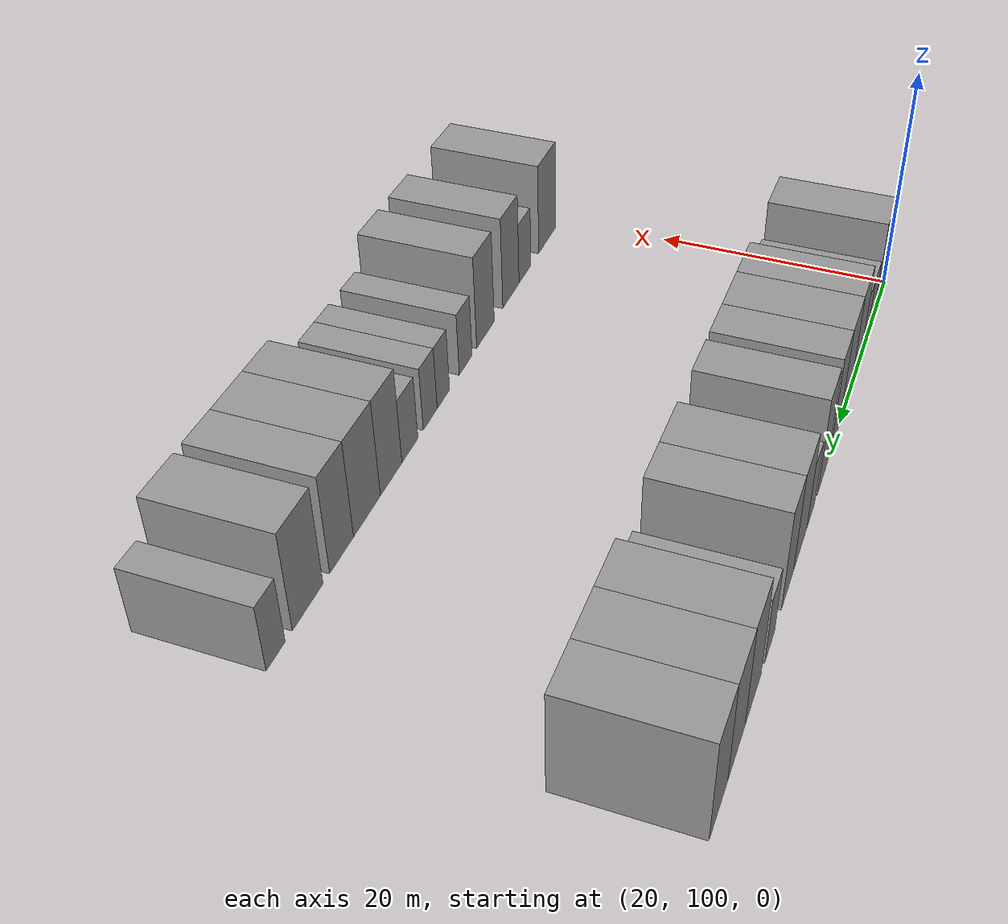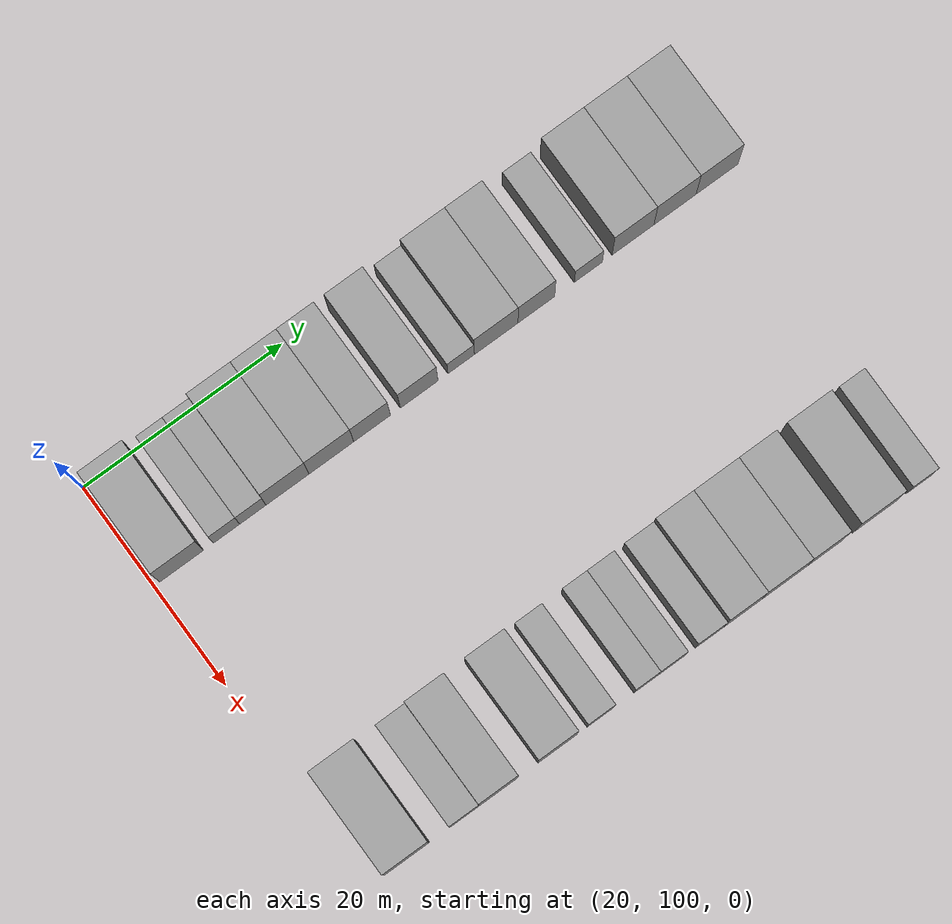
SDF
<sdf version="1.6">
 <world name="default">
  <model name="building_79">
   <static>1</static>
   <pose>25.0000 102.7708 0 0.000000 0.000000 0.000000</pose>
   <link name="link">
    <pose>0 0 4.50 0 0 0</pose>
    <collision name="collision"><geometry><box><size>10.0000 4.3746 9.0000</size></box></geometry></collision>
    <visual name="visual">
     <cast_shadows>0</cast_shadows>
     <geometry><box><size>10.0000 4.3746 9.0000</size></box></geometry>
     <material>
      <script>
       <uri>model://grey_wall/materials/scripts</uri>
       <uri>model://grey_wall/materials/textures</uri>
       <name>vrc/grey_wall</name>
      </script>
     </material>
    </visual>
   </link>
  </model>
  <model name="building_80">
   <static>1</static>
   <pose>25.0000 107.2701 0 0.000000 0.000000 0.000000</pose>
   <link name="link">
    <pose>0 0 3.00 0 0 0</pose>
    <collision name="collision"><geometry><box><size>10.0000 2.6240 6.0000</size></box></geometry></collision>
    <visual name="visual">
     <cast_shadows>0</cast_shadows>
     <geometry><box><size>10.0000 2.6240 6.0000</size></box></geometry>
     <material>
      <script>
       <uri>model://grey_wall/materials/scripts</uri>
       <uri>model://grey_wall/materials/textures</uri>
       <name>vrc/grey_wall</name>
      </script>
     </material>
    </visual>
   </link>
  </model>
  <model name="building_81">
   <static>1</static>
   <pose>25.0000 109.9038 0 0.000000 0.000000 0.000000</pose>
   <link name="link">
    <pose>0 0 3.00 0 0 0</pose>
    <collision name="collision"><geometry><box><size>10.0000 2.6432 6.0000</size></box></geometry></collision>
    <visual name="visual">
     <cast_shadows>0</cast_shadows>
     <geometry><box><size>10.0000 2.6432 6.0000</size></box></geometry>
     <material>
      <script>
       <uri>model://grey_wall/materials/scripts</uri>
       <uri>model://grey_wall/materials/textures</uri>
       <name>vrc/grey_wall</name>
      </script>
     </material>
    </visual>
   </link>
  </model>
  <model name="building_82">
   <static>1</static>
   <pose>25.0000 113.3933 0 0.000000 0.000000 0.000000</pose>
   <link name="link">
    <pose>0 0 4.50 0 0 0</pose>
    <collision name="collision"><geometry><box><size>10.0000 4.3359 9.0000</size></box></geometry></collision>
    <visual name="visual">
     <cast_shadows>0</cast_shadows>
     <geometry><box><size>10.0000 4.3359 9.0000</size></box></geometry>
     <material>
      <script>
       <uri>model://grey_wall/materials/scripts</uri>
       <uri>model://grey_wall/materials/textures</uri>
       <name>vrc/grey_wall</name>
      </script>
     </material>
    </visual>
   </link>
  </model>
  <model name="building_83">
   <static>1</static>
   <pose>25.0000 117.8071 0 0.000000 0.000000 0.000000</pose>
   <link name="link">
    <pose>0 0 4.50 0 0 0</pose>
    <collision name="collision"><geometry><box><size>10.0000 4.4917 9.0000</size></box></geometry></collision>
    <visual name="visual">
     <cast_shadows>0</cast_shadows>
     <geometry><box><size>10.0000 4.4917 9.0000</size></box></geometry>
     <material>
      <script>
       <uri>model://grey_wall/materials/scripts</uri>
       <uri>model://grey_wall/materials/textures</uri>
       <name>vrc/grey_wall</name>
      </script>
     </material>
    </visual>
   </link>
  </model>
  <model name="building_84">
   <static>1</static>
   <pose>25.0000 121.9009 0 0.000000 0.000000 0.000000</pose>
   <link name="link">
    <pose>0 0 4.50 0 0 0</pose>
    <collision name="collision"><geometry><box><size>10.0000 3.6960 9.0000</size></box></geometry></collision>
    <visual name="visual">
     <cast_shadows>0</cast_shadows>
     <geometry><box><size>10.0000 3.6960 9.0000</size></box></geometry>
     <material>
      <script>
       <uri>model://grey_wall/materials/scripts</uri>
       <uri>model://grey_wall/materials/textures</uri>
       <name>vrc/grey_wall</name>
      </script>
     </material>
    </visual>
   </link>
  </model>
  <model name="building_85">
   <static>1</static>
   <pose>25.0000 126.6534 0 0.000000 0.000000 0.000000</pose>
   <link name="link">
    <pose>0 0 4.50 0 0 0</pose>
    <collision name="collision"><geometry><box><size>10.0000 3.8089 9.0000</size></box></geometry></collision>
    <visual name="visual">
     <cast_shadows>0</cast_shadows>
     <geometry><box><size>10.0000 3.8089 9.0000</size></box></geometry>
     <material>
      <script>
       <uri>model://grey_wall/materials/scripts</uri>
       <uri>model://grey_wall/materials/textures</uri>
       <name>vrc/grey_wall</name>
      </script>
     </material>
    </visual>
   </link>
  </model>
  <model name="building_86">
   <static>1</static>
   <pose>25.0000 130.8979 0 0.000000 0.000000 0.000000</pose>
   <link name="link">
    <pose>0 0 3.00 0 0 0</pose>
    <collision name="collision"><geometry><box><size>10.0000 2.6801 6.0000</size></box></geometry></collision>
    <visual name="visual">
     <cast_shadows>0</cast_shadows>
     <geometry><box><size>10.0000 2.6801 6.0000</size></box></geometry>
     <material>
      <script>
       <uri>model://grey_wall/materials/scripts</uri>
       <uri>model://grey_wall/materials/textures</uri>
       <name>vrc/grey_wall</name>
      </script>
     </material>
    </visual>
   </link>
  </model>
  <model name="building_87">
   <static>1</static>
   <pose>25.0000 134.4437 0 0.000000 0.000000 0.000000</pose>
   <link name="link">
    <pose>0 0 4.50 0 0 0</pose>
    <collision name="collision"><geometry><box><size>10.0000 4.4114 9.0000</size></box></geometry></collision>
    <visual name="visual">
     <cast_shadows>0</cast_shadows>
     <geometry><box><size>10.0000 4.4114 9.0000</size></box></geometry>
     <material>
      <script>
       <uri>model://grey_wall/materials/scripts</uri>
       <uri>model://grey_wall/materials/textures</uri>
       <name>vrc/grey_wall</name>
      </script>
     </material>
    </visual>
   </link>
  </model>
  <model name="building_88">
   <static>1</static>
   <pose>25.0000 138.5040 0 0.000000 0.000000 0.000000</pose>
   <link name="link">
    <pose>0 0 4.50 0 0 0</pose>
    <collision name="collision"><geometry><box><size>10.0000 3.7091 9.0000</size></box></geometry></collision>
    <visual name="visual">
     <cast_shadows>0</cast_shadows>
     <geometry><box><size>10.0000 3.7091 9.0000</size></box></geometry>
     <material>
      <script>
       <uri>model://grey_wall/materials/scripts</uri>
       <uri>model://grey_wall/materials/textures</uri>
       <name>vrc/grey_wall</name>
      </script>
     </material>
    </visual>
   </link>
  </model>
  <model name="building_89">
   <static>1</static>
   <pose>25.0000 143.7785 0 0.000000 0.000000 0.000000</pose>
   <link name="link">
    <pose>0 0 3.00 0 0 0</pose>
    <collision name="collision"><geometry><box><size>10.0000 2.8400 6.0000</size></box></geometry></collision>
    <visual name="visual">
     <cast_shadows>0</cast_shadows>
     <geometry><box><size>10.0000 2.8400 6.0000</size></box></geometry>
     <material>
      <script>
       <uri>model://grey_wall/materials/scripts</uri>
       <uri>model://grey_wall/materials/textures</uri>
       <name>vrc/grey_wall</name>
      </script>
     </material>
    </visual>
   </link>
  </model>
  <model name="building_90">
   <static>1</static>
   <pose>25.0000 148.3240 0 0.000000 0.000000 0.000000</pose>
   <link name="link">
    <pose>0 0 4.50 0 0 0</pose>
    <collision name="collision"><geometry><box><size>10.0000 4.2509 9.0000</size></box></geometry></collision>
    <visual name="visual">
     <cast_shadows>0</cast_shadows>
     <geometry><box><size>10.0000 4.2509 9.0000</size></box></geometry>
     <material>
      <script>
       <uri>model://grey_wall/materials/scripts</uri>
       <uri>model://grey_wall/materials/textures</uri>
       <name>vrc/grey_wall</name>
      </script>
     </material>
    </visual>
   </link>
  </model>
  <model name="building_91">
   <static>1</static>
   <pose>25.0000 152.6005 0 0.000000 0.000000 0.000000</pose>
   <link name="link">
    <pose>0 0 4.50 0 0 0</pose>
    <collision name="collision"><geometry><box><size>10.0000 4.3023 9.0000</size></box></geometry></collision>
    <visual name="visual">
     <cast_shadows>0</cast_shadows>
     <geometry><box><size>10.0000 4.3023 9.0000</size></box></geometry>
     <material>
      <script>
       <uri>model://grey_wall/materials/scripts</uri>
       <uri>model://grey_wall/materials/textures</uri>
       <name>vrc/grey_wall</name>
      </script>
     </material>
    </visual>
   </link>
  </model>
  <model name="building_92">
   <static>1</static>
   <pose>25.0000 156.8946 0 0.000000 0.000000 0.000000</pose>
   <link name="link">
    <pose>0 0 4.50 0 0 0</pose>
    <collision name="collision"><geometry><box><size>10.0000 4.2859 9.0000</size></box></geometry></collision>
    <visual name="visual">
     <cast_shadows>0</cast_shadows>
     <geometry><box><size>10.0000 4.2859 9.0000</size></box></geometry>
     <material>
      <script>
       <uri>model://grey_wall/materials/scripts</uri>
       <uri>model://grey_wall/materials/textures</uri>
       <name>vrc/grey_wall</name>
      </script>
     </material>
    </visual>
   </link>
  </model>
  <model name="building_192">
   <static>1</static>
   <pose>55.0000 103.7158 0 0.000000 0.000000 0.000000</pose>
   <link name="link">
    <pose>0 0 4.50 0 0 0</pose>
    <collision name="collision"><geometry><box><size>10.0000 4.4608 9.0000</size></box></geometry></collision>
    <visual name="visual">
     <cast_shadows>0</cast_shadows>
     <geometry><box><size>10.0000 4.4608 9.0000</size></box></geometry>
     <material>
      <script>
       <uri>model://grey_wall/materials/scripts</uri>
       <uri>model://grey_wall/materials/textures</uri>
       <name>vrc/grey_wall</name>
      </script>
     </material>
    </visual>
   </link>
  </model>
  <model name="building_193">
   <static>1</static>
   <pose>55.0000 109.4129 0 0.000000 0.000000 0.000000</pose>
   <link name="link">
    <pose>0 0 3.00 0 0 0</pose>
    <collision name="collision"><geometry><box><size>10.0000 2.9335 6.0000</size></box></geometry></collision>
    <visual name="visual">
     <cast_shadows>0</cast_shadows>
     <geometry><box><size>10.0000 2.9335 6.0000</size></box></geometry>
     <material>
      <script>
       <uri>model://grey_wall/materials/scripts</uri>
       <uri>model://grey_wall/materials/textures</uri>
       <name>vrc/grey_wall</name>
      </script>
     </material>
    </visual>
   </link>
  </model>
  <model name="building_194">
   <static>1</static>
   <pose>55.0000 112.8255 0 0.000000 0.000000 0.000000</pose>
   <link name="link">
    <pose>0 0 4.50 0 0 0</pose>
    <collision name="collision"><geometry><box><size>10.0000 3.8917 9.0000</size></box></geometry></collision>
    <visual name="visual">
     <cast_shadows>0</cast_shadows>
     <geometry><box><size>10.0000 3.8917 9.0000</size></box></geometry>
     <material>
      <script>
       <uri>model://grey_wall/materials/scripts</uri>
       <uri>model://grey_wall/materials/textures</uri>
       <name>vrc/grey_wall</name>
      </script>
     </material>
    </visual>
   </link>
  </model>
  <model name="building_195">
   <static>1</static>
   <pose>55.0000 118.7344 0 0.000000 0.000000 0.000000</pose>
   <link name="link">
    <pose>0 0 4.50 0 0 0</pose>
    <collision name="collision"><geometry><box><size>10.0000 3.9260 9.0000</size></box></geometry></collision>
    <visual name="visual">
     <cast_shadows>0</cast_shadows>
     <geometry><box><size>10.0000 3.9260 9.0000</size></box></geometry>
     <material>
      <script>
       <uri>model://grey_wall/materials/scripts</uri>
       <uri>model://grey_wall/materials/textures</uri>
       <name>vrc/grey_wall</name>
      </script>
     </material>
    </visual>
   </link>
  </model>
  <model name="building_196">
   <static>1</static>
   <pose>55.0000 123.0538 0 0.000000 0.000000 0.000000</pose>
   <link name="link">
    <pose>0 0 3.00 0 0 0</pose>
    <collision name="collision"><geometry><box><size>10.0000 2.7127 6.0000</size></box></geometry></collision>
    <visual name="visual">
     <cast_shadows>0</cast_shadows>
     <geometry><box><size>10.0000 2.7127 6.0000</size></box></geometry>
     <material>
      <script>
       <uri>model://grey_wall/materials/scripts</uri>
       <uri>model://grey_wall/materials/textures</uri>
       <name>vrc/grey_wall</name>
      </script>
     </material>
    </visual>
   </link>
  </model>
  <model name="building_197">
   <static>1</static>
   <pose>55.0000 127.6436 0 0.000000 0.000000 0.000000</pose>
   <link name="link">
    <pose>0 0 3.00 0 0 0</pose>
    <collision name="collision"><geometry><box><size>10.0000 2.4670 6.0000</size></box></geometry></collision>
    <visual name="visual">
     <cast_shadows>0</cast_shadows>
     <geometry><box><size>10.0000 2.4670 6.0000</size></box></geometry>
     <material>
      <script>
       <uri>model://grey_wall/materials/scripts</uri>
       <uri>model://grey_wall/materials/textures</uri>
       <name>vrc/grey_wall</name>
      </script>
     </material>
    </visual>
   </link>
  </model>
  <model name="building_198">
   <static>1</static>
   <pose>55.0000 130.2310 0 0.000000 0.000000 0.000000</pose>
   <link name="link">
    <pose>0 0 3.00 0 0 0</pose>
    <collision name="collision"><geometry><box><size>10.0000 2.7078 6.0000</size></box></geometry></collision>
    <visual name="visual">
     <cast_shadows>0</cast_shadows>
     <geometry><box><size>10.0000 2.7078 6.0000</size></box></geometry>
     <material>
      <script>
       <uri>model://grey_wall/materials/scripts</uri>
       <uri>model://grey_wall/materials/textures</uri>
       <name>vrc/grey_wall</name>
      </script>
     </material>
    </visual>
   </link>
  </model>
  <model name="building_199">
   <static>1</static>
   <pose>55.0000 134.0537 0 0.000000 0.000000 0.000000</pose>
   <link name="link">
    <pose>0 0 3.00 0 0 0</pose>
    <collision name="collision"><geometry><box><size>10.0000 2.9375 6.0000</size></box></geometry></collision>
    <visual name="visual">
     <cast_shadows>0</cast_shadows>
     <geometry><box><size>10.0000 2.9375 6.0000</size></box></geometry>
     <material>
      <script>
       <uri>model://grey_wall/materials/scripts</uri>
       <uri>model://grey_wall/materials/textures</uri>
       <name>vrc/grey_wall</name>
      </script>
     </material>
    </visual>
   </link>
  </model>
  <model name="building_200">
   <static>1</static>
   <pose>55.0000 137.4140 0 0.000000 0.000000 0.000000</pose>
   <link name="link">
    <pose>0 0 4.50 0 0 0</pose>
    <collision name="collision"><geometry><box><size>10.0000 3.7832 9.0000</size></box></geometry></collision>
    <visual name="visual">
     <cast_shadows>0</cast_shadows>
     <geometry><box><size>10.0000 3.7832 9.0000</size></box></geometry>
     <material>
      <script>
       <uri>model://grey_wall/materials/scripts</uri>
       <uri>model://grey_wall/materials/textures</uri>
       <name>vrc/grey_wall</name>
      </script>
     </material>
    </visual>
   </link>
  </model>
  <model name="building_201">
   <static>1</static>
   <pose>55.0000 141.5356 0 0.000000 0.000000 0.000000</pose>
   <link name="link">
    <pose>0 0 4.50 0 0 0</pose>
    <collision name="collision"><geometry><box><size>10.0000 4.4599 9.0000</size></box></geometry></collision>
    <visual name="visual">
     <cast_shadows>0</cast_shadows>
     <geometry><box><size>10.0000 4.4599 9.0000</size></box></geometry>
     <material>
      <script>
       <uri>model://grey_wall/materials/scripts</uri>
       <uri>model://grey_wall/materials/textures</uri>
       <name>vrc/grey_wall</name>
      </script>
     </material>
    </visual>
   </link>
  </model>
  <model name="building_202">
   <static>1</static>
   <pose>55.0000 145.6330 0 0.000000 0.000000 0.000000</pose>
   <link name="link">
    <pose>0 0 4.50 0 0 0</pose>
    <collision name="collision"><geometry><box><size>10.0000 3.7350 9.0000</size></box></geometry></collision>
    <visual name="visual">
     <cast_shadows>0</cast_shadows>
     <geometry><box><size>10.0000 3.7350 9.0000</size></box></geometry>
     <material>
      <script>
       <uri>model://grey_wall/materials/scripts</uri>
       <uri>model://grey_wall/materials/textures</uri>
       <name>vrc/grey_wall</name>
      </script>
     </material>
    </visual>
   </link>
  </model>
  <model name="building_203">
   <static>1</static>
   <pose>55.0000 150.7257 0 0.000000 0.000000 0.000000</pose>
   <link name="link">
    <pose>0 0 4.50 0 0 0</pose>
    <collision name="collision"><geometry><box><size>10.0000 4.4503 9.0000</size></box></geometry></collision>
    <visual name="visual">
     <cast_shadows>0</cast_shadows>
     <geometry><box><size>10.0000 4.4503 9.0000</size></box></geometry>
     <material>
      <script>
       <uri>model://grey_wall/materials/scripts</uri>
       <uri>model://grey_wall/materials/textures</uri>
       <name>vrc/grey_wall</name>
      </script>
     </material>
    </visual>
   </link>
  </model>
  <model name="building_204">
   <static>1</static>
   <pose>55.0000 155.2436 0 0.000000 0.000000 0.000000</pose>
   <link name="link">
    <pose>0 0 3.00 0 0 0</pose>
    <collision name="collision"><geometry><box><size>10.0000 2.5855 6.0000</size></box></geometry></collision>
    <visual name="visual">
     <cast_shadows>0</cast_shadows>
     <geometry><box><size>10.0000 2.5855 6.0000</size></box></geometry>
     <material>
      <script>
       <uri>model://grey_wall/materials/scripts</uri>
       <uri>model://grey_wall/materials/textures</uri>
       <name>vrc/grey_wall</name>
      </script>
     </material>
    </visual>
   </link>
  </model>
 </world>
</sdf>
